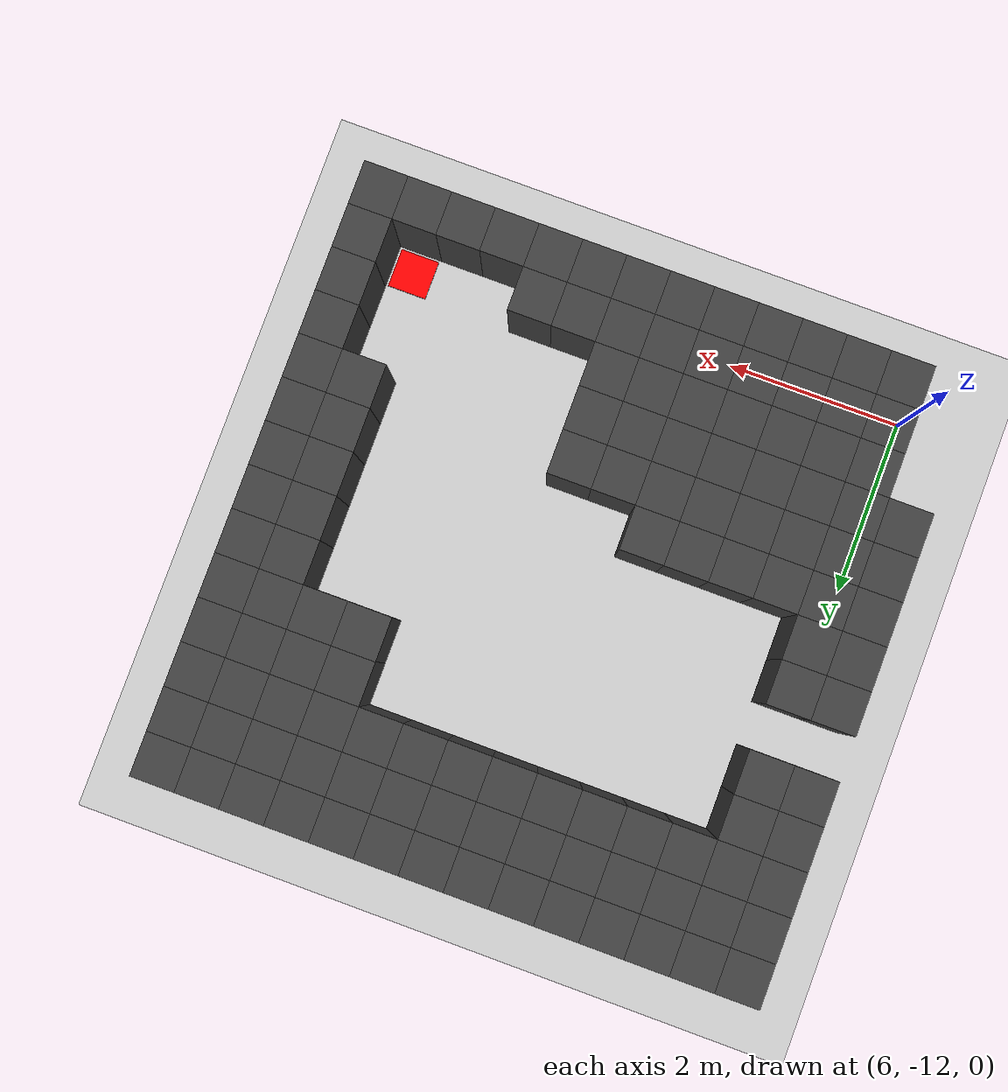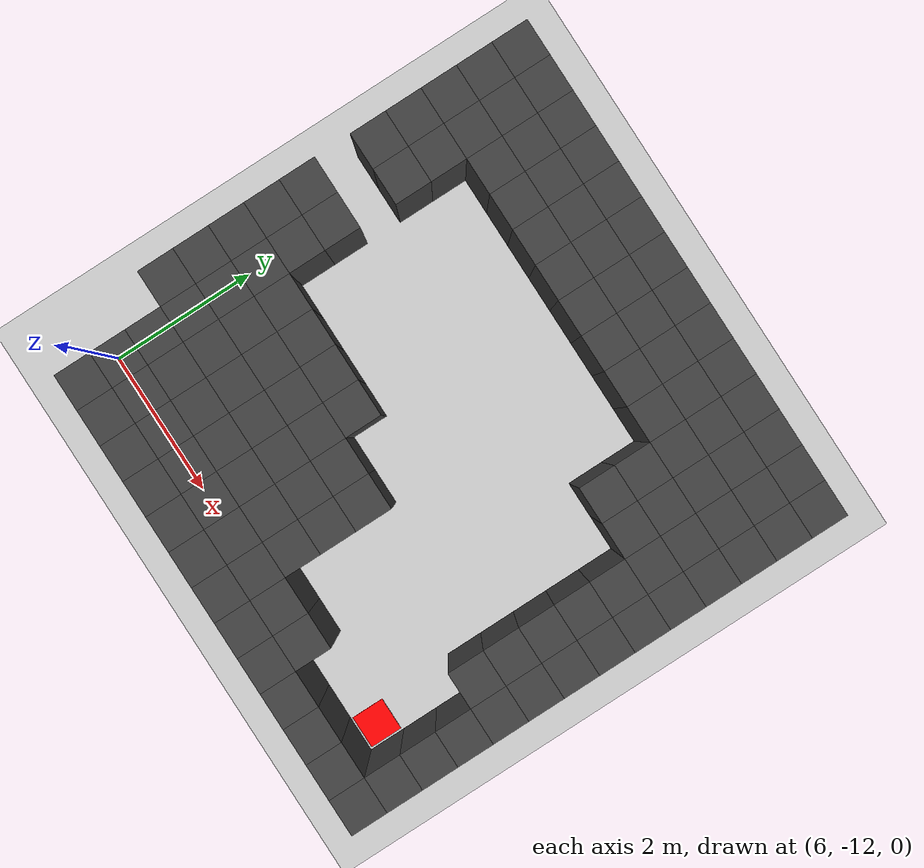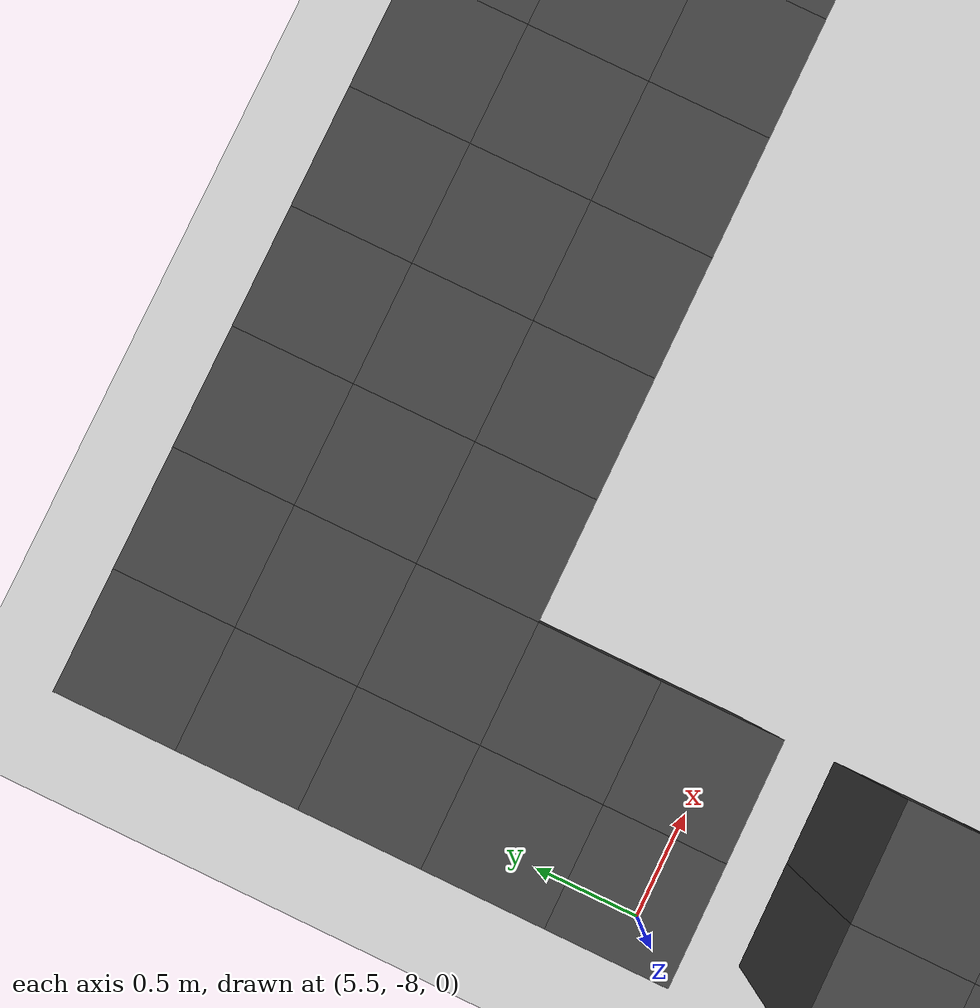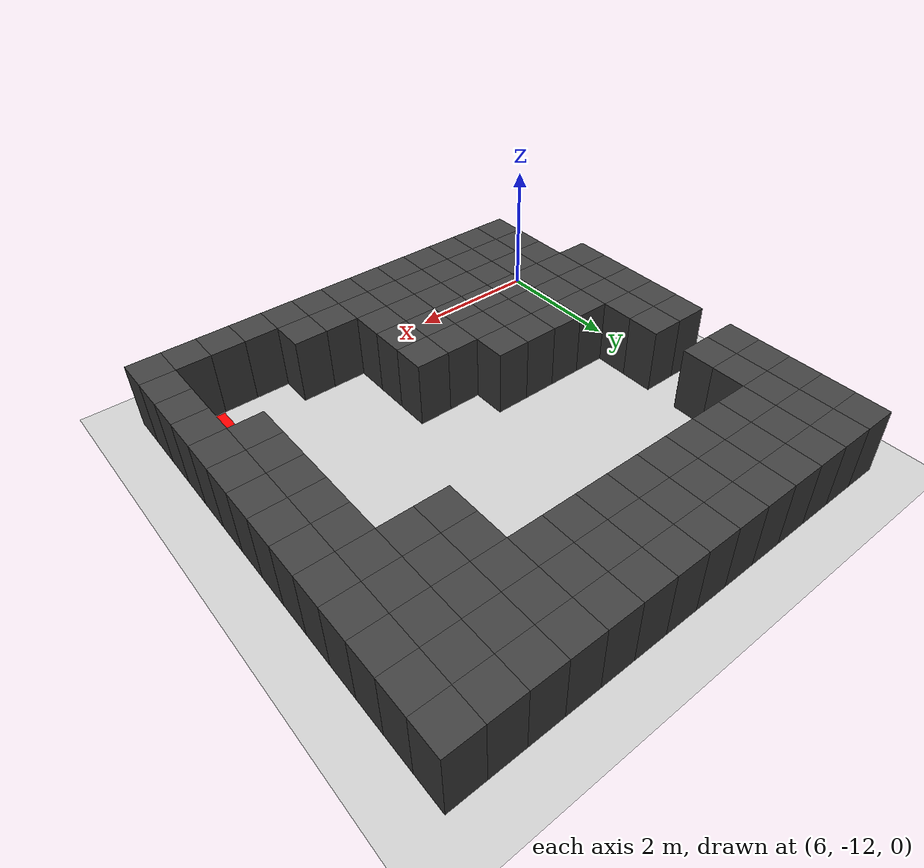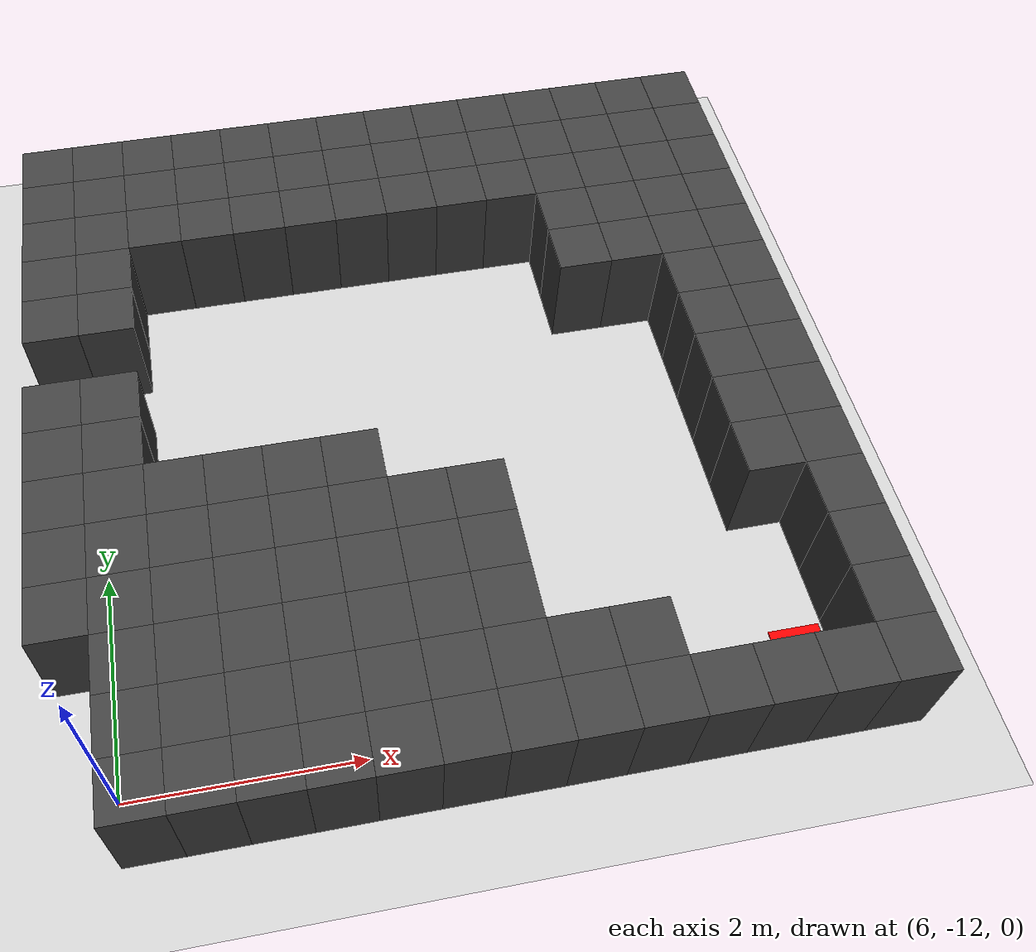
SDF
<sdf version="1.7">
 <world name="map_12818">
  <model name="ground_plane">
   <static>true</static>
   <link name="link">
    <collision name="collision">
     <geometry><plane><normal>0 0 1</normal><size>200 200</size></plane></geometry>
    </collision>
    <visual name="visual">
     <geometry><plane><normal>0 0 1</normal><size>200 200</size></plane></geometry>
     <material><ambient>0.8 0.8 0.8 1</ambient><diffuse>0.8 0.8 0.8 1</diffuse></material>
    </visual>
   </link>
  </model>
  <model name="maze_environment">
   <static>true</static>
   <link name="wall_1522">
    <pose>5.750 -5.750 0.500 0 0 0</pose>
    <collision name="col"><geometry><box><size>0.5 0.5 1.0</size></box></geometry></collision>
    <visual name="vis">
     <geometry><box><size>0.5 0.5 1.0</size></box></geometry>
     <material><ambient>0.15 0.15 0.15 1</ambient><diffuse>0.25 0.25 0.25 1</diffuse></material>
    </visual>
   </link>
   <link name="wall_1523">
    <pose>6.250 -5.750 0.500 0 0 0</pose>
    <collision name="col"><geometry><box><size>0.5 0.5 1.0</size></box></geometry></collision>
    <visual name="vis">
     <geometry><box><size>0.5 0.5 1.0</size></box></geometry>
     <material><ambient>0.15 0.15 0.15 1</ambient><diffuse>0.25 0.25 0.25 1</diffuse></material>
    </visual>
   </link>
   <link name="wall_1524">
    <pose>6.750 -5.750 0.500 0 0 0</pose>
    <collision name="col"><geometry><box><size>0.5 0.5 1.0</size></box></geometry></collision>
    <visual name="vis">
     <geometry><box><size>0.5 0.5 1.0</size></box></geometry>
     <material><ambient>0.15 0.15 0.15 1</ambient><diffuse>0.25 0.25 0.25 1</diffuse></material>
    </visual>
   </link>
   <link name="wall_1525">
    <pose>7.250 -5.750 0.500 0 0 0</pose>
    <collision name="col"><geometry><box><size>0.5 0.5 1.0</size></box></geometry></collision>
    <visual name="vis">
     <geometry><box><size>0.5 0.5 1.0</size></box></geometry>
     <material><ambient>0.15 0.15 0.15 1</ambient><diffuse>0.25 0.25 0.25 1</diffuse></material>
    </visual>
   </link>
   <link name="wall_1526">
    <pose>7.750 -5.750 0.500 0 0 0</pose>
    <collision name="col"><geometry><box><size>0.5 0.5 1.0</size></box></geometry></collision>
    <visual name="vis">
     <geometry><box><size>0.5 0.5 1.0</size></box></geometry>
     <material><ambient>0.15 0.15 0.15 1</ambient><diffuse>0.25 0.25 0.25 1</diffuse></material>
    </visual>
   </link>
   <link name="wall_1527">
    <pose>8.250 -5.750 0.500 0 0 0</pose>
    <collision name="col"><geometry><box><size>0.5 0.5 1.0</size></box></geometry></collision>
    <visual name="vis">
     <geometry><box><size>0.5 0.5 1.0</size></box></geometry>
     <material><ambient>0.15 0.15 0.15 1</ambient><diffuse>0.25 0.25 0.25 1</diffuse></material>
    </visual>
   </link>
   <link name="wall_1528">
    <pose>8.750 -5.750 0.500 0 0 0</pose>
    <collision name="col"><geometry><box><size>0.5 0.5 1.0</size></box></geometry></collision>
    <visual name="vis">
     <geometry><box><size>0.5 0.5 1.0</size></box></geometry>
     <material><ambient>0.15 0.15 0.15 1</ambient><diffuse>0.25 0.25 0.25 1</diffuse></material>
    </visual>
   </link>
   <link name="wall_1529">
    <pose>9.250 -5.750 0.500 0 0 0</pose>
    <collision name="col"><geometry><box><size>0.5 0.5 1.0</size></box></geometry></collision>
    <visual name="vis">
     <geometry><box><size>0.5 0.5 1.0</size></box></geometry>
     <material><ambient>0.15 0.15 0.15 1</ambient><diffuse>0.25 0.25 0.25 1</diffuse></material>
    </visual>
   </link>
   <link name="wall_1530">
    <pose>9.750 -5.750 0.500 0 0 0</pose>
    <collision name="col"><geometry><box><size>0.5 0.5 1.0</size></box></geometry></collision>
    <visual name="vis">
     <geometry><box><size>0.5 0.5 1.0</size></box></geometry>
     <material><ambient>0.15 0.15 0.15 1</ambient><diffuse>0.25 0.25 0.25 1</diffuse></material>
    </visual>
   </link>
   <link name="wall_1531">
    <pose>10.250 -5.750 0.500 0 0 0</pose>
    <collision name="col"><geometry><box><size>0.5 0.5 1.0</size></box></geometry></collision>
    <visual name="vis">
     <geometry><box><size>0.5 0.5 1.0</size></box></geometry>
     <material><ambient>0.15 0.15 0.15 1</ambient><diffuse>0.25 0.25 0.25 1</diffuse></material>
    </visual>
   </link>
   <link name="wall_1532">
    <pose>10.750 -5.750 0.500 0 0 0</pose>
    <collision name="col"><geometry><box><size>0.5 0.5 1.0</size></box></geometry></collision>
    <visual name="vis">
     <geometry><box><size>0.5 0.5 1.0</size></box></geometry>
     <material><ambient>0.15 0.15 0.15 1</ambient><diffuse>0.25 0.25 0.25 1</diffuse></material>
    </visual>
   </link>
   <link name="wall_1533">
    <pose>11.250 -5.750 0.500 0 0 0</pose>
    <collision name="col"><geometry><box><size>0.5 0.5 1.0</size></box></geometry></collision>
    <visual name="vis">
     <geometry><box><size>0.5 0.5 1.0</size></box></geometry>
     <material><ambient>0.15 0.15 0.15 1</ambient><diffuse>0.25 0.25 0.25 1</diffuse></material>
    </visual>
   </link>
   <link name="wall_1534">
    <pose>11.750 -5.750 0.500 0 0 0</pose>
    <collision name="col"><geometry><box><size>0.5 0.5 1.0</size></box></geometry></collision>
    <visual name="vis">
     <geometry><box><size>0.5 0.5 1.0</size></box></geometry>
     <material><ambient>0.15 0.15 0.15 1</ambient><diffuse>0.25 0.25 0.25 1</diffuse></material>
    </visual>
   </link>
   <link name="wall_1535">
    <pose>12.250 -5.750 0.500 0 0 0</pose>
    <collision name="col"><geometry><box><size>0.5 0.5 1.0</size></box></geometry></collision>
    <visual name="vis">
     <geometry><box><size>0.5 0.5 1.0</size></box></geometry>
     <material><ambient>0.15 0.15 0.15 1</ambient><diffuse>0.25 0.25 0.25 1</diffuse></material>
    </visual>
   </link>
   <link name="wall_1555">
    <pose>5.750 -6.250 0.500 0 0 0</pose>
    <collision name="col"><geometry><box><size>0.5 0.5 1.0</size></box></geometry></collision>
    <visual name="vis">
     <geometry><box><size>0.5 0.5 1.0</size></box></geometry>
     <material><ambient>0.15 0.15 0.15 1</ambient><diffuse>0.25 0.25 0.25 1</diffuse></material>
    </visual>
   </link>
   <link name="wall_1556">
    <pose>6.250 -6.250 0.500 0 0 0</pose>
    <collision name="col"><geometry><box><size>0.5 0.5 1.0</size></box></geometry></collision>
    <visual name="vis">
     <geometry><box><size>0.5 0.5 1.0</size></box></geometry>
     <material><ambient>0.15 0.15 0.15 1</ambient><diffuse>0.25 0.25 0.25 1</diffuse></material>
    </visual>
   </link>
   <link name="wall_1557">
    <pose>6.750 -6.250 0.500 0 0 0</pose>
    <collision name="col"><geometry><box><size>0.5 0.5 1.0</size></box></geometry></collision>
    <visual name="vis">
     <geometry><box><size>0.5 0.5 1.0</size></box></geometry>
     <material><ambient>0.15 0.15 0.15 1</ambient><diffuse>0.25 0.25 0.25 1</diffuse></material>
    </visual>
   </link>
   <link name="wall_1558">
    <pose>7.250 -6.250 0.500 0 0 0</pose>
    <collision name="col"><geometry><box><size>0.5 0.5 1.0</size></box></geometry></collision>
    <visual name="vis">
     <geometry><box><size>0.5 0.5 1.0</size></box></geometry>
     <material><ambient>0.15 0.15 0.15 1</ambient><diffuse>0.25 0.25 0.25 1</diffuse></material>
    </visual>
   </link>
   <link name="wall_1559">
    <pose>7.750 -6.250 0.500 0 0 0</pose>
    <collision name="col"><geometry><box><size>0.5 0.5 1.0</size></box></geometry></collision>
    <visual name="vis">
     <geometry><box><size>0.5 0.5 1.0</size></box></geometry>
     <material><ambient>0.15 0.15 0.15 1</ambient><diffuse>0.25 0.25 0.25 1</diffuse></material>
    </visual>
   </link>
   <link name="wall_1560">
    <pose>8.250 -6.250 0.500 0 0 0</pose>
    <collision name="col"><geometry><box><size>0.5 0.5 1.0</size></box></geometry></collision>
    <visual name="vis">
     <geometry><box><size>0.5 0.5 1.0</size></box></geometry>
     <material><ambient>0.15 0.15 0.15 1</ambient><diffuse>0.25 0.25 0.25 1</diffuse></material>
    </visual>
   </link>
   <link name="wall_1561">
    <pose>8.750 -6.250 0.500 0 0 0</pose>
    <collision name="col"><geometry><box><size>0.5 0.5 1.0</size></box></geometry></collision>
    <visual name="vis">
     <geometry><box><size>0.5 0.5 1.0</size></box></geometry>
     <material><ambient>0.15 0.15 0.15 1</ambient><diffuse>0.25 0.25 0.25 1</diffuse></material>
    </visual>
   </link>
   <link name="wall_1562">
    <pose>9.250 -6.250 0.500 0 0 0</pose>
    <collision name="col"><geometry><box><size>0.5 0.5 1.0</size></box></geometry></collision>
    <visual name="vis">
     <geometry><box><size>0.5 0.5 1.0</size></box></geometry>
     <material><ambient>0.15 0.15 0.15 1</ambient><diffuse>0.25 0.25 0.25 1</diffuse></material>
    </visual>
   </link>
   <link name="wall_1563">
    <pose>9.750 -6.250 0.500 0 0 0</pose>
    <collision name="col"><geometry><box><size>0.5 0.5 1.0</size></box></geometry></collision>
    <visual name="vis">
     <geometry><box><size>0.5 0.5 1.0</size></box></geometry>
     <material><ambient>0.15 0.15 0.15 1</ambient><diffuse>0.25 0.25 0.25 1</diffuse></material>
    </visual>
   </link>
   <link name="wall_1564">
    <pose>10.250 -6.250 0.500 0 0 0</pose>
    <collision name="col"><geometry><box><size>0.5 0.5 1.0</size></box></geometry></collision>
    <visual name="vis">
     <geometry><box><size>0.5 0.5 1.0</size></box></geometry>
     <material><ambient>0.15 0.15 0.15 1</ambient><diffuse>0.25 0.25 0.25 1</diffuse></material>
    </visual>
   </link>
   <link name="wall_1565">
    <pose>10.750 -6.250 0.500 0 0 0</pose>
    <collision name="col"><geometry><box><size>0.5 0.5 1.0</size></box></geometry></collision>
    <visual name="vis">
     <geometry><box><size>0.5 0.5 1.0</size></box></geometry>
     <material><ambient>0.15 0.15 0.15 1</ambient><diffuse>0.25 0.25 0.25 1</diffuse></material>
    </visual>
   </link>
   <link name="wall_1566">
    <pose>11.250 -6.250 0.500 0 0 0</pose>
    <collision name="col"><geometry><box><size>0.5 0.5 1.0</size></box></geometry></collision>
    <visual name="vis">
     <geometry><box><size>0.5 0.5 1.0</size></box></geometry>
     <material><ambient>0.15 0.15 0.15 1</ambient><diffuse>0.25 0.25 0.25 1</diffuse></material>
    </visual>
   </link>
   <link name="wall_1567">
    <pose>11.750 -6.250 0.500 0 0 0</pose>
    <collision name="col"><geometry><box><size>0.5 0.5 1.0</size></box></geometry></collision>
    <visual name="vis">
     <geometry><box><size>0.5 0.5 1.0</size></box></geometry>
     <material><ambient>0.15 0.15 0.15 1</ambient><diffuse>0.25 0.25 0.25 1</diffuse></material>
    </visual>
   </link>
   <link name="wall_1568">
    <pose>12.250 -6.250 0.500 0 0 0</pose>
    <collision name="col"><geometry><box><size>0.5 0.5 1.0</size></box></geometry></collision>
    <visual name="vis">
     <geometry><box><size>0.5 0.5 1.0</size></box></geometry>
     <material><ambient>0.15 0.15 0.15 1</ambient><diffuse>0.25 0.25 0.25 1</diffuse></material>
    </visual>
   </link>
   <link name="wall_1584">
    <pose>5.750 -6.750 0.500 0 0 0</pose>
    <collision name="col"><geometry><box><size>0.5 0.5 1.0</size></box></geometry></collision>
    <visual name="vis">
     <geometry><box><size>0.5 0.5 1.0</size></box></geometry>
     <material><ambient>0.15 0.15 0.15 1</ambient><diffuse>0.25 0.25 0.25 1</diffuse></material>
    </visual>
   </link>
   <link name="wall_1585">
    <pose>6.250 -6.750 0.500 0 0 0</pose>
    <collision name="col"><geometry><box><size>0.5 0.5 1.0</size></box></geometry></collision>
    <visual name="vis">
     <geometry><box><size>0.5 0.5 1.0</size></box></geometry>
     <material><ambient>0.15 0.15 0.15 1</ambient><diffuse>0.25 0.25 0.25 1</diffuse></material>
    </visual>
   </link>
   <link name="wall_1586">
    <pose>6.750 -6.750 0.500 0 0 0</pose>
    <collision name="col"><geometry><box><size>0.5 0.5 1.0</size></box></geometry></collision>
    <visual name="vis">
     <geometry><box><size>0.5 0.5 1.0</size></box></geometry>
     <material><ambient>0.15 0.15 0.15 1</ambient><diffuse>0.25 0.25 0.25 1</diffuse></material>
    </visual>
   </link>
   <link name="wall_1587">
    <pose>7.250 -6.750 0.500 0 0 0</pose>
    <collision name="col"><geometry><box><size>0.5 0.5 1.0</size></box></geometry></collision>
    <visual name="vis">
     <geometry><box><size>0.5 0.5 1.0</size></box></geometry>
     <material><ambient>0.15 0.15 0.15 1</ambient><diffuse>0.25 0.25 0.25 1</diffuse></material>
    </visual>
   </link>
   <link name="wall_1588">
    <pose>7.750 -6.750 0.500 0 0 0</pose>
    <collision name="col"><geometry><box><size>0.5 0.5 1.0</size></box></geometry></collision>
    <visual name="vis">
     <geometry><box><size>0.5 0.5 1.0</size></box></geometry>
     <material><ambient>0.15 0.15 0.15 1</ambient><diffuse>0.25 0.25 0.25 1</diffuse></material>
    </visual>
   </link>
   <link name="wall_1589">
    <pose>8.250 -6.750 0.500 0 0 0</pose>
    <collision name="col"><geometry><box><size>0.5 0.5 1.0</size></box></geometry></collision>
    <visual name="vis">
     <geometry><box><size>0.5 0.5 1.0</size></box></geometry>
     <material><ambient>0.15 0.15 0.15 1</ambient><diffuse>0.25 0.25 0.25 1</diffuse></material>
    </visual>
   </link>
   <link name="wall_1590">
    <pose>8.750 -6.750 0.500 0 0 0</pose>
    <collision name="col"><geometry><box><size>0.5 0.5 1.0</size></box></geometry></collision>
    <visual name="vis">
     <geometry><box><size>0.5 0.5 1.0</size></box></geometry>
     <material><ambient>0.15 0.15 0.15 1</ambient><diffuse>0.25 0.25 0.25 1</diffuse></material>
    </visual>
   </link>
   <link name="wall_1591">
    <pose>9.250 -6.750 0.500 0 0 0</pose>
    <collision name="col"><geometry><box><size>0.5 0.5 1.0</size></box></geometry></collision>
    <visual name="vis">
     <geometry><box><size>0.5 0.5 1.0</size></box></geometry>
     <material><ambient>0.15 0.15 0.15 1</ambient><diffuse>0.25 0.25 0.25 1</diffuse></material>
    </visual>
   </link>
   <link name="wall_1592">
    <pose>9.750 -6.750 0.500 0 0 0</pose>
    <collision name="col"><geometry><box><size>0.5 0.5 1.0</size></box></geometry></collision>
    <visual name="vis">
     <geometry><box><size>0.5 0.5 1.0</size></box></geometry>
     <material><ambient>0.15 0.15 0.15 1</ambient><diffuse>0.25 0.25 0.25 1</diffuse></material>
    </visual>
   </link>
   <link name="wall_1593">
    <pose>10.250 -6.750 0.500 0 0 0</pose>
    <collision name="col"><geometry><box><size>0.5 0.5 1.0</size></box></geometry></collision>
    <visual name="vis">
     <geometry><box><size>0.5 0.5 1.0</size></box></geometry>
     <material><ambient>0.15 0.15 0.15 1</ambient><diffuse>0.25 0.25 0.25 1</diffuse></material>
    </visual>
   </link>
   <link name="wall_1594">
    <pose>10.750 -6.750 0.500 0 0 0</pose>
    <collision name="col"><geometry><box><size>0.5 0.5 1.0</size></box></geometry></collision>
    <visual name="vis">
     <geometry><box><size>0.5 0.5 1.0</size></box></geometry>
     <material><ambient>0.15 0.15 0.15 1</ambient><diffuse>0.25 0.25 0.25 1</diffuse></material>
    </visual>
   </link>
   <link name="wall_1595">
    <pose>11.250 -6.750 0.500 0 0 0</pose>
    <collision name="col"><geometry><box><size>0.5 0.5 1.0</size></box></geometry></collision>
    <visual name="vis">
     <geometry><box><size>0.5 0.5 1.0</size></box></geometry>
     <material><ambient>0.15 0.15 0.15 1</ambient><diffuse>0.25 0.25 0.25 1</diffuse></material>
    </visual>
   </link>
   <link name="wall_1596">
    <pose>11.750 -6.750 0.500 0 0 0</pose>
    <collision name="col"><geometry><box><size>0.5 0.5 1.0</size></box></geometry></collision>
    <visual name="vis">
     <geometry><box><size>0.5 0.5 1.0</size></box></geometry>
     <material><ambient>0.15 0.15 0.15 1</ambient><diffuse>0.25 0.25 0.25 1</diffuse></material>
    </visual>
   </link>
   <link name="wall_1597">
    <pose>12.250 -6.750 0.500 0 0 0</pose>
    <collision name="col"><geometry><box><size>0.5 0.5 1.0</size></box></geometry></collision>
    <visual name="vis">
     <geometry><box><size>0.5 0.5 1.0</size></box></geometry>
     <material><ambient>0.15 0.15 0.15 1</ambient><diffuse>0.25 0.25 0.25 1</diffuse></material>
    </visual>
   </link>
   <link name="wall_1620">
    <pose>5.750 -7.250 0.500 0 0 0</pose>
    <collision name="col"><geometry><box><size>0.5 0.5 1.0</size></box></geometry></collision>
    <visual name="vis">
     <geometry><box><size>0.5 0.5 1.0</size></box></geometry>
     <material><ambient>0.15 0.15 0.15 1</ambient><diffuse>0.25 0.25 0.25 1</diffuse></material>
    </visual>
   </link>
   <link name="wall_1621">
    <pose>6.250 -7.250 0.500 0 0 0</pose>
    <collision name="col"><geometry><box><size>0.5 0.5 1.0</size></box></geometry></collision>
    <visual name="vis">
     <geometry><box><size>0.5 0.5 1.0</size></box></geometry>
     <material><ambient>0.15 0.15 0.15 1</ambient><diffuse>0.25 0.25 0.25 1</diffuse></material>
    </visual>
   </link>
   <link name="wall_1622">
    <pose>10.750 -7.250 0.500 0 0 0</pose>
    <collision name="col"><geometry><box><size>0.5 0.5 1.0</size></box></geometry></collision>
    <visual name="vis">
     <geometry><box><size>0.5 0.5 1.0</size></box></geometry>
     <material><ambient>0.15 0.15 0.15 1</ambient><diffuse>0.25 0.25 0.25 1</diffuse></material>
    </visual>
   </link>
   <link name="wall_1623">
    <pose>11.250 -7.250 0.500 0 0 0</pose>
    <collision name="col"><geometry><box><size>0.5 0.5 1.0</size></box></geometry></collision>
    <visual name="vis">
     <geometry><box><size>0.5 0.5 1.0</size></box></geometry>
     <material><ambient>0.15 0.15 0.15 1</ambient><diffuse>0.25 0.25 0.25 1</diffuse></material>
    </visual>
   </link>
   <link name="wall_1624">
    <pose>11.750 -7.250 0.500 0 0 0</pose>
    <collision name="col"><geometry><box><size>0.5 0.5 1.0</size></box></geometry></collision>
    <visual name="vis">
     <geometry><box><size>0.5 0.5 1.0</size></box></geometry>
     <material><ambient>0.15 0.15 0.15 1</ambient><diffuse>0.25 0.25 0.25 1</diffuse></material>
    </visual>
   </link>
   <link name="wall_1625">
    <pose>12.250 -7.250 0.500 0 0 0</pose>
    <collision name="col"><geometry><box><size>0.5 0.5 1.0</size></box></geometry></collision>
    <visual name="vis">
     <geometry><box><size>0.5 0.5 1.0</size></box></geometry>
     <material><ambient>0.15 0.15 0.15 1</ambient><diffuse>0.25 0.25 0.25 1</diffuse></material>
    </visual>
   </link>
   <link name="wall_1648">
    <pose>5.750 -7.750 0.500 0 0 0</pose>
    <collision name="col"><geometry><box><size>0.5 0.5 1.0</size></box></geometry></collision>
    <visual name="vis">
     <geometry><box><size>0.5 0.5 1.0</size></box></geometry>
     <material><ambient>0.15 0.15 0.15 1</ambient><diffuse>0.25 0.25 0.25 1</diffuse></material>
    </visual>
   </link>
   <link name="wall_1649">
    <pose>6.250 -7.750 0.500 0 0 0</pose>
    <collision name="col"><geometry><box><size>0.5 0.5 1.0</size></box></geometry></collision>
    <visual name="vis">
     <geometry><box><size>0.5 0.5 1.0</size></box></geometry>
     <material><ambient>0.15 0.15 0.15 1</ambient><diffuse>0.25 0.25 0.25 1</diffuse></material>
    </visual>
   </link>
   <link name="wall_1650">
    <pose>10.750 -7.750 0.500 0 0 0</pose>
    <collision name="col"><geometry><box><size>0.5 0.5 1.0</size></box></geometry></collision>
    <visual name="vis">
     <geometry><box><size>0.5 0.5 1.0</size></box></geometry>
     <material><ambient>0.15 0.15 0.15 1</ambient><diffuse>0.25 0.25 0.25 1</diffuse></material>
    </visual>
   </link>
   <link name="wall_1651">
    <pose>11.250 -7.750 0.500 0 0 0</pose>
    <collision name="col"><geometry><box><size>0.5 0.5 1.0</size></box></geometry></collision>
    <visual name="vis">
     <geometry><box><size>0.5 0.5 1.0</size></box></geometry>
     <material><ambient>0.15 0.15 0.15 1</ambient><diffuse>0.25 0.25 0.25 1</diffuse></material>
    </visual>
   </link>
   <link name="wall_1652">
    <pose>11.750 -7.750 0.500 0 0 0</pose>
    <collision name="col"><geometry><box><size>0.5 0.5 1.0</size></box></geometry></collision>
    <visual name="vis">
     <geometry><box><size>0.5 0.5 1.0</size></box></geometry>
     <material><ambient>0.15 0.15 0.15 1</ambient><diffuse>0.25 0.25 0.25 1</diffuse></material>
    </visual>
   </link>
   <link name="wall_1653">
    <pose>12.250 -7.750 0.500 0 0 0</pose>
    <collision name="col"><geometry><box><size>0.5 0.5 1.0</size></box></geometry></collision>
    <visual name="vis">
     <geometry><box><size>0.5 0.5 1.0</size></box></geometry>
     <material><ambient>0.15 0.15 0.15 1</ambient><diffuse>0.25 0.25 0.25 1</diffuse></material>
    </visual>
   </link>
   <link name="wall_1665">
    <pose>11.750 -8.250 0.500 0 0 0</pose>
    <collision name="col"><geometry><box><size>0.5 0.5 1.0</size></box></geometry></collision>
    <visual name="vis">
     <geometry><box><size>0.5 0.5 1.0</size></box></geometry>
     <material><ambient>0.15 0.15 0.15 1</ambient><diffuse>0.25 0.25 0.25 1</diffuse></material>
    </visual>
   </link>
   <link name="wall_1666">
    <pose>12.250 -8.250 0.500 0 0 0</pose>
    <collision name="col"><geometry><box><size>0.5 0.5 1.0</size></box></geometry></collision>
    <visual name="vis">
     <geometry><box><size>0.5 0.5 1.0</size></box></geometry>
     <material><ambient>0.15 0.15 0.15 1</ambient><diffuse>0.25 0.25 0.25 1</diffuse></material>
    </visual>
   </link>
   <link name="wall_1696">
    <pose>5.750 -8.750 0.500 0 0 0</pose>
    <collision name="col"><geometry><box><size>0.5 0.5 1.0</size></box></geometry></collision>
    <visual name="vis">
     <geometry><box><size>0.5 0.5 1.0</size></box></geometry>
     <material><ambient>0.15 0.15 0.15 1</ambient><diffuse>0.25 0.25 0.25 1</diffuse></material>
    </visual>
   </link>
   <link name="wall_1697">
    <pose>6.250 -8.750 0.500 0 0 0</pose>
    <collision name="col"><geometry><box><size>0.5 0.5 1.0</size></box></geometry></collision>
    <visual name="vis">
     <geometry><box><size>0.5 0.5 1.0</size></box></geometry>
     <material><ambient>0.15 0.15 0.15 1</ambient><diffuse>0.25 0.25 0.25 1</diffuse></material>
    </visual>
   </link>
   <link name="wall_1698">
    <pose>11.750 -8.750 0.500 0 0 0</pose>
    <collision name="col"><geometry><box><size>0.5 0.5 1.0</size></box></geometry></collision>
    <visual name="vis">
     <geometry><box><size>0.5 0.5 1.0</size></box></geometry>
     <material><ambient>0.15 0.15 0.15 1</ambient><diffuse>0.25 0.25 0.25 1</diffuse></material>
    </visual>
   </link>
   <link name="wall_1699">
    <pose>12.250 -8.750 0.500 0 0 0</pose>
    <collision name="col"><geometry><box><size>0.5 0.5 1.0</size></box></geometry></collision>
    <visual name="vis">
     <geometry><box><size>0.5 0.5 1.0</size></box></geometry>
     <material><ambient>0.15 0.15 0.15 1</ambient><diffuse>0.25 0.25 0.25 1</diffuse></material>
    </visual>
   </link>
   <link name="wall_1729">
    <pose>5.750 -9.250 0.500 0 0 0</pose>
    <collision name="col"><geometry><box><size>0.5 0.5 1.0</size></box></geometry></collision>
    <visual name="vis">
     <geometry><box><size>0.5 0.5 1.0</size></box></geometry>
     <material><ambient>0.15 0.15 0.15 1</ambient><diffuse>0.25 0.25 0.25 1</diffuse></material>
    </visual>
   </link>
   <link name="wall_1730">
    <pose>6.250 -9.250 0.500 0 0 0</pose>
    <collision name="col"><geometry><box><size>0.5 0.5 1.0</size></box></geometry></collision>
    <visual name="vis">
     <geometry><box><size>0.5 0.5 1.0</size></box></geometry>
     <material><ambient>0.15 0.15 0.15 1</ambient><diffuse>0.25 0.25 0.25 1</diffuse></material>
    </visual>
   </link>
   <link name="wall_1731">
    <pose>11.750 -9.250 0.500 0 0 0</pose>
    <collision name="col"><geometry><box><size>0.5 0.5 1.0</size></box></geometry></collision>
    <visual name="vis">
     <geometry><box><size>0.5 0.5 1.0</size></box></geometry>
     <material><ambient>0.15 0.15 0.15 1</ambient><diffuse>0.25 0.25 0.25 1</diffuse></material>
    </visual>
   </link>
   <link name="wall_1732">
    <pose>12.250 -9.250 0.500 0 0 0</pose>
    <collision name="col"><geometry><box><size>0.5 0.5 1.0</size></box></geometry></collision>
    <visual name="vis">
     <geometry><box><size>0.5 0.5 1.0</size></box></geometry>
     <material><ambient>0.15 0.15 0.15 1</ambient><diffuse>0.25 0.25 0.25 1</diffuse></material>
    </visual>
   </link>
   <link name="wall_1762">
    <pose>5.750 -9.750 0.500 0 0 0</pose>
    <collision name="col"><geometry><box><size>0.5 0.5 1.0</size></box></geometry></collision>
    <visual name="vis">
     <geometry><box><size>0.5 0.5 1.0</size></box></geometry>
     <material><ambient>0.15 0.15 0.15 1</ambient><diffuse>0.25 0.25 0.25 1</diffuse></material>
    </visual>
   </link>
   <link name="wall_1763">
    <pose>6.250 -9.750 0.500 0 0 0</pose>
    <collision name="col"><geometry><box><size>0.5 0.5 1.0</size></box></geometry></collision>
    <visual name="vis">
     <geometry><box><size>0.5 0.5 1.0</size></box></geometry>
     <material><ambient>0.15 0.15 0.15 1</ambient><diffuse>0.25 0.25 0.25 1</diffuse></material>
    </visual>
   </link>
   <link name="wall_1764">
    <pose>6.750 -9.750 0.500 0 0 0</pose>
    <collision name="col"><geometry><box><size>0.5 0.5 1.0</size></box></geometry></collision>
    <visual name="vis">
     <geometry><box><size>0.5 0.5 1.0</size></box></geometry>
     <material><ambient>0.15 0.15 0.15 1</ambient><diffuse>0.25 0.25 0.25 1</diffuse></material>
    </visual>
   </link>
   <link name="wall_1765">
    <pose>7.250 -9.750 0.500 0 0 0</pose>
    <collision name="col"><geometry><box><size>0.5 0.5 1.0</size></box></geometry></collision>
    <visual name="vis">
     <geometry><box><size>0.5 0.5 1.0</size></box></geometry>
     <material><ambient>0.15 0.15 0.15 1</ambient><diffuse>0.25 0.25 0.25 1</diffuse></material>
    </visual>
   </link>
   <link name="wall_1766">
    <pose>7.750 -9.750 0.500 0 0 0</pose>
    <collision name="col"><geometry><box><size>0.5 0.5 1.0</size></box></geometry></collision>
    <visual name="vis">
     <geometry><box><size>0.5 0.5 1.0</size></box></geometry>
     <material><ambient>0.15 0.15 0.15 1</ambient><diffuse>0.25 0.25 0.25 1</diffuse></material>
    </visual>
   </link>
   <link name="wall_1767">
    <pose>8.250 -9.750 0.500 0 0 0</pose>
    <collision name="col"><geometry><box><size>0.5 0.5 1.0</size></box></geometry></collision>
    <visual name="vis">
     <geometry><box><size>0.5 0.5 1.0</size></box></geometry>
     <material><ambient>0.15 0.15 0.15 1</ambient><diffuse>0.25 0.25 0.25 1</diffuse></material>
    </visual>
   </link>
   <link name="wall_1768">
    <pose>11.750 -9.750 0.500 0 0 0</pose>
    <collision name="col"><geometry><box><size>0.5 0.5 1.0</size></box></geometry></collision>
    <visual name="vis">
     <geometry><box><size>0.5 0.5 1.0</size></box></geometry>
     <material><ambient>0.15 0.15 0.15 1</ambient><diffuse>0.25 0.25 0.25 1</diffuse></material>
    </visual>
   </link>
   <link name="wall_1769">
    <pose>12.250 -9.750 0.500 0 0 0</pose>
    <collision name="col"><geometry><box><size>0.5 0.5 1.0</size></box></geometry></collision>
    <visual name="vis">
     <geometry><box><size>0.5 0.5 1.0</size></box></geometry>
     <material><ambient>0.15 0.15 0.15 1</ambient><diffuse>0.25 0.25 0.25 1</diffuse></material>
    </visual>
   </link>
   <link name="wall_1799">
    <pose>5.750 -10.250 0.500 0 0 0</pose>
    <collision name="col"><geometry><box><size>0.5 0.5 1.0</size></box></geometry></collision>
    <visual name="vis">
     <geometry><box><size>0.5 0.5 1.0</size></box></geometry>
     <material><ambient>0.15 0.15 0.15 1</ambient><diffuse>0.25 0.25 0.25 1</diffuse></material>
    </visual>
   </link>
   <link name="wall_1800">
    <pose>6.250 -10.250 0.500 0 0 0</pose>
    <collision name="col"><geometry><box><size>0.5 0.5 1.0</size></box></geometry></collision>
    <visual name="vis">
     <geometry><box><size>0.5 0.5 1.0</size></box></geometry>
     <material><ambient>0.15 0.15 0.15 1</ambient><diffuse>0.25 0.25 0.25 1</diffuse></material>
    </visual>
   </link>
   <link name="wall_1801">
    <pose>6.750 -10.250 0.500 0 0 0</pose>
    <collision name="col"><geometry><box><size>0.5 0.5 1.0</size></box></geometry></collision>
    <visual name="vis">
     <geometry><box><size>0.5 0.5 1.0</size></box></geometry>
     <material><ambient>0.15 0.15 0.15 1</ambient><diffuse>0.25 0.25 0.25 1</diffuse></material>
    </visual>
   </link>
   <link name="wall_1802">
    <pose>7.250 -10.250 0.500 0 0 0</pose>
    <collision name="col"><geometry><box><size>0.5 0.5 1.0</size></box></geometry></collision>
    <visual name="vis">
     <geometry><box><size>0.5 0.5 1.0</size></box></geometry>
     <material><ambient>0.15 0.15 0.15 1</ambient><diffuse>0.25 0.25 0.25 1</diffuse></material>
    </visual>
   </link>
   <link name="wall_1803">
    <pose>7.750 -10.250 0.500 0 0 0</pose>
    <collision name="col"><geometry><box><size>0.5 0.5 1.0</size></box></geometry></collision>
    <visual name="vis">
     <geometry><box><size>0.5 0.5 1.0</size></box></geometry>
     <material><ambient>0.15 0.15 0.15 1</ambient><diffuse>0.25 0.25 0.25 1</diffuse></material>
    </visual>
   </link>
   <link name="wall_1804">
    <pose>8.250 -10.250 0.500 0 0 0</pose>
    <collision name="col"><geometry><box><size>0.5 0.5 1.0</size></box></geometry></collision>
    <visual name="vis">
     <geometry><box><size>0.5 0.5 1.0</size></box></geometry>
     <material><ambient>0.15 0.15 0.15 1</ambient><diffuse>0.25 0.25 0.25 1</diffuse></material>
    </visual>
   </link>
   <link name="wall_1805">
    <pose>8.750 -10.250 0.500 0 0 0</pose>
    <collision name="col"><geometry><box><size>0.5 0.5 1.0</size></box></geometry></collision>
    <visual name="vis">
     <geometry><box><size>0.5 0.5 1.0</size></box></geometry>
     <material><ambient>0.15 0.15 0.15 1</ambient><diffuse>0.25 0.25 0.25 1</diffuse></material>
    </visual>
   </link>
   <link name="wall_1806">
    <pose>9.250 -10.250 0.500 0 0 0</pose>
    <collision name="col"><geometry><box><size>0.5 0.5 1.0</size></box></geometry></collision>
    <visual name="vis">
     <geometry><box><size>0.5 0.5 1.0</size></box></geometry>
     <material><ambient>0.15 0.15 0.15 1</ambient><diffuse>0.25 0.25 0.25 1</diffuse></material>
    </visual>
   </link>
   <link name="wall_1807">
    <pose>11.750 -10.250 0.500 0 0 0</pose>
    <collision name="col"><geometry><box><size>0.5 0.5 1.0</size></box></geometry></collision>
    <visual name="vis">
     <geometry><box><size>0.5 0.5 1.0</size></box></geometry>
     <material><ambient>0.15 0.15 0.15 1</ambient><diffuse>0.25 0.25 0.25 1</diffuse></material>
    </visual>
   </link>
   <link name="wall_1808">
    <pose>12.250 -10.250 0.500 0 0 0</pose>
    <collision name="col"><geometry><box><size>0.5 0.5 1.0</size></box></geometry></collision>
    <visual name="vis">
     <geometry><box><size>0.5 0.5 1.0</size></box></geometry>
     <material><ambient>0.15 0.15 0.15 1</ambient><diffuse>0.25 0.25 0.25 1</diffuse></material>
    </visual>
   </link>
   <link name="wall_1838">
    <pose>5.750 -10.750 0.500 0 0 0</pose>
    <collision name="col"><geometry><box><size>0.5 0.5 1.0</size></box></geometry></collision>
    <visual name="vis">
     <geometry><box><size>0.5 0.5 1.0</size></box></geometry>
     <material><ambient>0.15 0.15 0.15 1</ambient><diffuse>0.25 0.25 0.25 1</diffuse></material>
    </visual>
   </link>
   <link name="wall_1839">
    <pose>6.250 -10.750 0.500 0 0 0</pose>
    <collision name="col"><geometry><box><size>0.5 0.5 1.0</size></box></geometry></collision>
    <visual name="vis">
     <geometry><box><size>0.5 0.5 1.0</size></box></geometry>
     <material><ambient>0.15 0.15 0.15 1</ambient><diffuse>0.25 0.25 0.25 1</diffuse></material>
    </visual>
   </link>
   <link name="wall_1840">
    <pose>6.750 -10.750 0.500 0 0 0</pose>
    <collision name="col"><geometry><box><size>0.5 0.5 1.0</size></box></geometry></collision>
    <visual name="vis">
     <geometry><box><size>0.5 0.5 1.0</size></box></geometry>
     <material><ambient>0.15 0.15 0.15 1</ambient><diffuse>0.25 0.25 0.25 1</diffuse></material>
    </visual>
   </link>
   <link name="wall_1841">
    <pose>7.250 -10.750 0.500 0 0 0</pose>
    <collision name="col"><geometry><box><size>0.5 0.5 1.0</size></box></geometry></collision>
    <visual name="vis">
     <geometry><box><size>0.5 0.5 1.0</size></box></geometry>
     <material><ambient>0.15 0.15 0.15 1</ambient><diffuse>0.25 0.25 0.25 1</diffuse></material>
    </visual>
   </link>
   <link name="wall_1842">
    <pose>7.750 -10.750 0.500 0 0 0</pose>
    <collision name="col"><geometry><box><size>0.5 0.5 1.0</size></box></geometry></collision>
    <visual name="vis">
     <geometry><box><size>0.5 0.5 1.0</size></box></geometry>
     <material><ambient>0.15 0.15 0.15 1</ambient><diffuse>0.25 0.25 0.25 1</diffuse></material>
    </visual>
   </link>
   <link name="wall_1843">
    <pose>8.250 -10.750 0.500 0 0 0</pose>
    <collision name="col"><geometry><box><size>0.5 0.5 1.0</size></box></geometry></collision>
    <visual name="vis">
     <geometry><box><size>0.5 0.5 1.0</size></box></geometry>
     <material><ambient>0.15 0.15 0.15 1</ambient><diffuse>0.25 0.25 0.25 1</diffuse></material>
    </visual>
   </link>
   <link name="wall_1844">
    <pose>8.750 -10.750 0.500 0 0 0</pose>
    <collision name="col"><geometry><box><size>0.5 0.5 1.0</size></box></geometry></collision>
    <visual name="vis">
     <geometry><box><size>0.5 0.5 1.0</size></box></geometry>
     <material><ambient>0.15 0.15 0.15 1</ambient><diffuse>0.25 0.25 0.25 1</diffuse></material>
    </visual>
   </link>
   <link name="wall_1845">
    <pose>9.250 -10.750 0.500 0 0 0</pose>
    <collision name="col"><geometry><box><size>0.5 0.5 1.0</size></box></geometry></collision>
    <visual name="vis">
     <geometry><box><size>0.5 0.5 1.0</size></box></geometry>
     <material><ambient>0.15 0.15 0.15 1</ambient><diffuse>0.25 0.25 0.25 1</diffuse></material>
    </visual>
   </link>
   <link name="wall_1846">
    <pose>12.250 -10.750 0.500 0 0 0</pose>
    <collision name="col"><geometry><box><size>0.5 0.5 1.0</size></box></geometry></collision>
    <visual name="vis">
     <geometry><box><size>0.5 0.5 1.0</size></box></geometry>
     <material><ambient>0.15 0.15 0.15 1</ambient><diffuse>0.25 0.25 0.25 1</diffuse></material>
    </visual>
   </link>
   <link name="wall_1877">
    <pose>6.250 -11.250 0.500 0 0 0</pose>
    <collision name="col"><geometry><box><size>0.5 0.5 1.0</size></box></geometry></collision>
    <visual name="vis">
     <geometry><box><size>0.5 0.5 1.0</size></box></geometry>
     <material><ambient>0.15 0.15 0.15 1</ambient><diffuse>0.25 0.25 0.25 1</diffuse></material>
    </visual>
   </link>
   <link name="wall_1878">
    <pose>6.750 -11.250 0.500 0 0 0</pose>
    <collision name="col"><geometry><box><size>0.5 0.5 1.0</size></box></geometry></collision>
    <visual name="vis">
     <geometry><box><size>0.5 0.5 1.0</size></box></geometry>
     <material><ambient>0.15 0.15 0.15 1</ambient><diffuse>0.25 0.25 0.25 1</diffuse></material>
    </visual>
   </link>
   <link name="wall_1879">
    <pose>7.250 -11.250 0.500 0 0 0</pose>
    <collision name="col"><geometry><box><size>0.5 0.5 1.0</size></box></geometry></collision>
    <visual name="vis">
     <geometry><box><size>0.5 0.5 1.0</size></box></geometry>
     <material><ambient>0.15 0.15 0.15 1</ambient><diffuse>0.25 0.25 0.25 1</diffuse></material>
    </visual>
   </link>
   <link name="wall_1880">
    <pose>7.750 -11.250 0.500 0 0 0</pose>
    <collision name="col"><geometry><box><size>0.5 0.5 1.0</size></box></geometry></collision>
    <visual name="vis">
     <geometry><box><size>0.5 0.5 1.0</size></box></geometry>
     <material><ambient>0.15 0.15 0.15 1</ambient><diffuse>0.25 0.25 0.25 1</diffuse></material>
    </visual>
   </link>
   <link name="wall_1881">
    <pose>8.250 -11.250 0.500 0 0 0</pose>
    <collision name="col"><geometry><box><size>0.5 0.5 1.0</size></box></geometry></collision>
    <visual name="vis">
     <geometry><box><size>0.5 0.5 1.0</size></box></geometry>
     <material><ambient>0.15 0.15 0.15 1</ambient><diffuse>0.25 0.25 0.25 1</diffuse></material>
    </visual>
   </link>
   <link name="wall_1882">
    <pose>8.750 -11.250 0.500 0 0 0</pose>
    <collision name="col"><geometry><box><size>0.5 0.5 1.0</size></box></geometry></collision>
    <visual name="vis">
     <geometry><box><size>0.5 0.5 1.0</size></box></geometry>
     <material><ambient>0.15 0.15 0.15 1</ambient><diffuse>0.25 0.25 0.25 1</diffuse></material>
    </visual>
   </link>
   <link name="wall_1883">
    <pose>9.250 -11.250 0.500 0 0 0</pose>
    <collision name="col"><geometry><box><size>0.5 0.5 1.0</size></box></geometry></collision>
    <visual name="vis">
     <geometry><box><size>0.5 0.5 1.0</size></box></geometry>
     <material><ambient>0.15 0.15 0.15 1</ambient><diffuse>0.25 0.25 0.25 1</diffuse></material>
    </visual>
   </link>
   <link name="wall_1884">
    <pose>12.250 -11.250 0.500 0 0 0</pose>
    <collision name="col"><geometry><box><size>0.5 0.5 1.0</size></box></geometry></collision>
    <visual name="vis">
     <geometry><box><size>0.5 0.5 1.0</size></box></geometry>
     <material><ambient>0.15 0.15 0.15 1</ambient><diffuse>0.25 0.25 0.25 1</diffuse></material>
    </visual>
   </link>
   <link name="wall_1915">
    <pose>6.250 -11.750 0.500 0 0 0</pose>
    <collision name="col"><geometry><box><size>0.5 0.5 1.0</size></box></geometry></collision>
    <visual name="vis">
     <geometry><box><size>0.5 0.5 1.0</size></box></geometry>
     <material><ambient>0.15 0.15 0.15 1</ambient><diffuse>0.25 0.25 0.25 1</diffuse></material>
    </visual>
   </link>
   <link name="wall_1916">
    <pose>6.750 -11.750 0.500 0 0 0</pose>
    <collision name="col"><geometry><box><size>0.5 0.5 1.0</size></box></geometry></collision>
    <visual name="vis">
     <geometry><box><size>0.5 0.5 1.0</size></box></geometry>
     <material><ambient>0.15 0.15 0.15 1</ambient><diffuse>0.25 0.25 0.25 1</diffuse></material>
    </visual>
   </link>
   <link name="wall_1917">
    <pose>7.250 -11.750 0.500 0 0 0</pose>
    <collision name="col"><geometry><box><size>0.5 0.5 1.0</size></box></geometry></collision>
    <visual name="vis">
     <geometry><box><size>0.5 0.5 1.0</size></box></geometry>
     <material><ambient>0.15 0.15 0.15 1</ambient><diffuse>0.25 0.25 0.25 1</diffuse></material>
    </visual>
   </link>
   <link name="wall_1918">
    <pose>7.750 -11.750 0.500 0 0 0</pose>
    <collision name="col"><geometry><box><size>0.5 0.5 1.0</size></box></geometry></collision>
    <visual name="vis">
     <geometry><box><size>0.5 0.5 1.0</size></box></geometry>
     <material><ambient>0.15 0.15 0.15 1</ambient><diffuse>0.25 0.25 0.25 1</diffuse></material>
    </visual>
   </link>
   <link name="wall_1919">
    <pose>8.250 -11.750 0.500 0 0 0</pose>
    <collision name="col"><geometry><box><size>0.5 0.5 1.0</size></box></geometry></collision>
    <visual name="vis">
     <geometry><box><size>0.5 0.5 1.0</size></box></geometry>
     <material><ambient>0.15 0.15 0.15 1</ambient><diffuse>0.25 0.25 0.25 1</diffuse></material>
    </visual>
   </link>
   <link name="wall_1920">
    <pose>8.750 -11.750 0.500 0 0 0</pose>
    <collision name="col"><geometry><box><size>0.5 0.5 1.0</size></box></geometry></collision>
    <visual name="vis">
     <geometry><box><size>0.5 0.5 1.0</size></box></geometry>
     <material><ambient>0.15 0.15 0.15 1</ambient><diffuse>0.25 0.25 0.25 1</diffuse></material>
    </visual>
   </link>
   <link name="wall_1921">
    <pose>9.250 -11.750 0.500 0 0 0</pose>
    <collision name="col"><geometry><box><size>0.5 0.5 1.0</size></box></geometry></collision>
    <visual name="vis">
     <geometry><box><size>0.5 0.5 1.0</size></box></geometry>
     <material><ambient>0.15 0.15 0.15 1</ambient><diffuse>0.25 0.25 0.25 1</diffuse></material>
    </visual>
   </link>
   <link name="wall_1922">
    <pose>9.750 -11.750 0.500 0 0 0</pose>
    <collision name="col"><geometry><box><size>0.5 0.5 1.0</size></box></geometry></collision>
    <visual name="vis">
     <geometry><box><size>0.5 0.5 1.0</size></box></geometry>
     <material><ambient>0.15 0.15 0.15 1</ambient><diffuse>0.25 0.25 0.25 1</diffuse></material>
    </visual>
   </link>
   <link name="wall_1923">
    <pose>10.250 -11.750 0.500 0 0 0</pose>
    <collision name="col"><geometry><box><size>0.5 0.5 1.0</size></box></geometry></collision>
    <visual name="vis">
     <geometry><box><size>0.5 0.5 1.0</size></box></geometry>
     <material><ambient>0.15 0.15 0.15 1</ambient><diffuse>0.25 0.25 0.25 1</diffuse></material>
    </visual>
   </link>
   <link name="wall_1924">
    <pose>12.250 -11.750 0.500 0 0 0</pose>
    <collision name="col"><geometry><box><size>0.5 0.5 1.0</size></box></geometry></collision>
    <visual name="vis">
     <geometry><box><size>0.5 0.5 1.0</size></box></geometry>
     <material><ambient>0.15 0.15 0.15 1</ambient><diffuse>0.25 0.25 0.25 1</diffuse></material>
    </visual>
   </link>
   <link name="wall_1962">
    <pose>6.250 -12.250 0.500 0 0 0</pose>
    <collision name="col"><geometry><box><size>0.5 0.5 1.0</size></box></geometry></collision>
    <visual name="vis">
     <geometry><box><size>0.5 0.5 1.0</size></box></geometry>
     <material><ambient>0.15 0.15 0.15 1</ambient><diffuse>0.25 0.25 0.25 1</diffuse></material>
    </visual>
   </link>
   <link name="wall_1963">
    <pose>6.750 -12.250 0.500 0 0 0</pose>
    <collision name="col"><geometry><box><size>0.5 0.5 1.0</size></box></geometry></collision>
    <visual name="vis">
     <geometry><box><size>0.5 0.5 1.0</size></box></geometry>
     <material><ambient>0.15 0.15 0.15 1</ambient><diffuse>0.25 0.25 0.25 1</diffuse></material>
    </visual>
   </link>
   <link name="wall_1964">
    <pose>7.250 -12.250 0.500 0 0 0</pose>
    <collision name="col"><geometry><box><size>0.5 0.5 1.0</size></box></geometry></collision>
    <visual name="vis">
     <geometry><box><size>0.5 0.5 1.0</size></box></geometry>
     <material><ambient>0.15 0.15 0.15 1</ambient><diffuse>0.25 0.25 0.25 1</diffuse></material>
    </visual>
   </link>
   <link name="wall_1965">
    <pose>7.750 -12.250 0.500 0 0 0</pose>
    <collision name="col"><geometry><box><size>0.5 0.5 1.0</size></box></geometry></collision>
    <visual name="vis">
     <geometry><box><size>0.5 0.5 1.0</size></box></geometry>
     <material><ambient>0.15 0.15 0.15 1</ambient><diffuse>0.25 0.25 0.25 1</diffuse></material>
    </visual>
   </link>
   <link name="wall_1966">
    <pose>8.250 -12.250 0.500 0 0 0</pose>
    <collision name="col"><geometry><box><size>0.5 0.5 1.0</size></box></geometry></collision>
    <visual name="vis">
     <geometry><box><size>0.5 0.5 1.0</size></box></geometry>
     <material><ambient>0.15 0.15 0.15 1</ambient><diffuse>0.25 0.25 0.25 1</diffuse></material>
    </visual>
   </link>
   <link name="wall_1967">
    <pose>8.750 -12.250 0.500 0 0 0</pose>
    <collision name="col"><geometry><box><size>0.5 0.5 1.0</size></box></geometry></collision>
    <visual name="vis">
     <geometry><box><size>0.5 0.5 1.0</size></box></geometry>
     <material><ambient>0.15 0.15 0.15 1</ambient><diffuse>0.25 0.25 0.25 1</diffuse></material>
    </visual>
   </link>
   <link name="wall_1968">
    <pose>9.250 -12.250 0.500 0 0 0</pose>
    <collision name="col"><geometry><box><size>0.5 0.5 1.0</size></box></geometry></collision>
    <visual name="vis">
     <geometry><box><size>0.5 0.5 1.0</size></box></geometry>
     <material><ambient>0.15 0.15 0.15 1</ambient><diffuse>0.25 0.25 0.25 1</diffuse></material>
    </visual>
   </link>
   <link name="wall_1969">
    <pose>9.750 -12.250 0.500 0 0 0</pose>
    <collision name="col"><geometry><box><size>0.5 0.5 1.0</size></box></geometry></collision>
    <visual name="vis">
     <geometry><box><size>0.5 0.5 1.0</size></box></geometry>
     <material><ambient>0.15 0.15 0.15 1</ambient><diffuse>0.25 0.25 0.25 1</diffuse></material>
    </visual>
   </link>
   <link name="wall_1970">
    <pose>10.250 -12.250 0.500 0 0 0</pose>
    <collision name="col"><geometry><box><size>0.5 0.5 1.0</size></box></geometry></collision>
    <visual name="vis">
     <geometry><box><size>0.5 0.5 1.0</size></box></geometry>
     <material><ambient>0.15 0.15 0.15 1</ambient><diffuse>0.25 0.25 0.25 1</diffuse></material>
    </visual>
   </link>
   <link name="wall_1971">
    <pose>10.750 -12.250 0.500 0 0 0</pose>
    <collision name="col"><geometry><box><size>0.5 0.5 1.0</size></box></geometry></collision>
    <visual name="vis">
     <geometry><box><size>0.5 0.5 1.0</size></box></geometry>
     <material><ambient>0.15 0.15 0.15 1</ambient><diffuse>0.25 0.25 0.25 1</diffuse></material>
    </visual>
   </link>
   <link name="wall_1972">
    <pose>11.250 -12.250 0.500 0 0 0</pose>
    <collision name="col"><geometry><box><size>0.5 0.5 1.0</size></box></geometry></collision>
    <visual name="vis">
     <geometry><box><size>0.5 0.5 1.0</size></box></geometry>
     <material><ambient>0.15 0.15 0.15 1</ambient><diffuse>0.25 0.25 0.25 1</diffuse></material>
    </visual>
   </link>
   <link name="wall_1973">
    <pose>11.750 -12.250 0.500 0 0 0</pose>
    <collision name="col"><geometry><box><size>0.5 0.5 1.0</size></box></geometry></collision>
    <visual name="vis">
     <geometry><box><size>0.5 0.5 1.0</size></box></geometry>
     <material><ambient>0.15 0.15 0.15 1</ambient><diffuse>0.25 0.25 0.25 1</diffuse></material>
    </visual>
   </link>
   <link name="wall_1974">
    <pose>12.250 -12.250 0.500 0 0 0</pose>
    <collision name="col"><geometry><box><size>0.5 0.5 1.0</size></box></geometry></collision>
    <visual name="vis">
     <geometry><box><size>0.5 0.5 1.0</size></box></geometry>
     <material><ambient>0.15 0.15 0.15 1</ambient><diffuse>0.25 0.25 0.25 1</diffuse></material>
    </visual>
   </link>
   <link name="goal_zone">
    <pose>11.750 -11.750 0.005 0 0 0</pose>
    <visual name="vis">
     <geometry><box><size>0.45 0.45 0.01</size></box></geometry>
     <material>
      <ambient>1.0 0.0 0.0 1</ambient>
      <diffuse>1.0 0.0 0.0 1</diffuse>
      <emissive>0.60 0.00 0.00 1</emissive>
     </material>
    </visual>
   </link>
  </model>
 </world>
</sdf>
